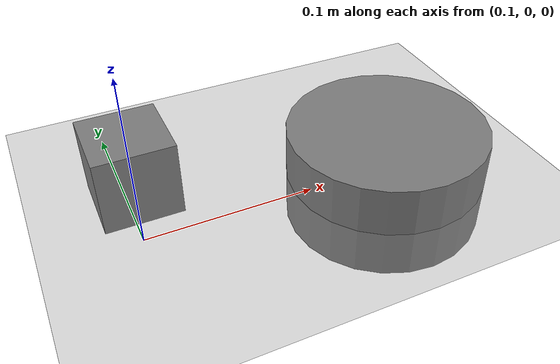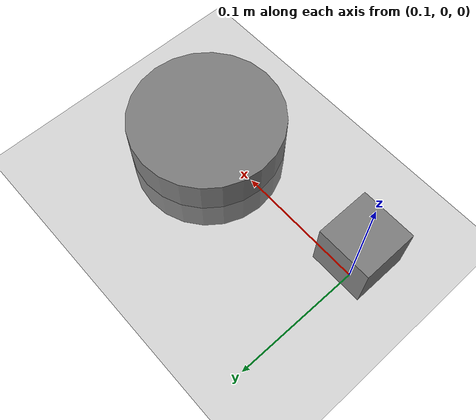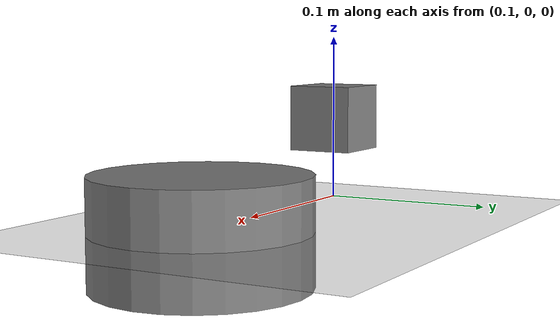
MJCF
<!-- Placeholder geometry. See vial_rack.xml. -->
<mujoco model="cube_bowl">
  <worldbody>
    <geom name="table" type="plane" size="1 1 0.1"/>
    <body name="bowl" pos="0.25 0 0">
      <geom name="bowl_body" type="cylinder" size="0.06 0.03"/>
    </body>
    <body name="cube" pos="0.1 0 0.05">
      <freejoint/>
      <geom name="cube_body" type="box" size="0.02 0.02 0.02"/>
    </body>
  </worldbody>
</mujoco>
